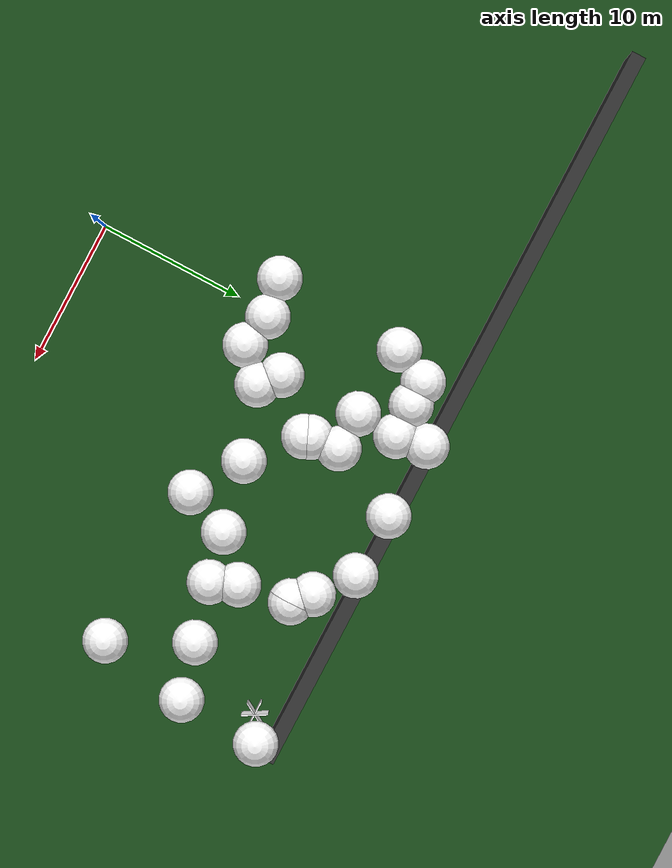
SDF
<sdf version="1.8">
 <world name="forest_world">
  <model name="fire_1">
   <pose>23.95 23.95 1.00 0 0 0.00</pose>
   <static>true</static>
   <link name="fire_link">
    <visual name="fire_1_fire_main_0">
     <geometry><box><size>1.80 0.10 2.00</size></box></geometry>
     <material>
      <ambient>0.7 0.35 0.0 1</ambient>
      <diffuse>1 1 1 1</diffuse>
      <specular>0 0 0 1</specular>
      <emissive>0 0 0 1</emissive>
      <pbr>
       <metal><albedo_map>textures/fire.png</albedo_map><metalness>0.0</metalness><roughness>0.6</roughness></metal>
      </pbr>
     </material>
     <transparency>0.0</transparency>
     <cast_shadows>false</cast_shadows>
    </visual>
    <visual name="fire_1_fire_60_1">
     <pose>0.00 0.00 0.10 0 0 1.05</pose>
     <geometry><box><size>1.80 0.10 2.00</size></box></geometry>
     <material>
      <ambient>0.7 0.35 0.0 1</ambient>
      <diffuse>1 1 1 1</diffuse>
      <specular>0 0 0 1</specular>
      <emissive>0 0 0 1</emissive>
      <pbr>
       <metal><albedo_map>textures/fire.png</albedo_map><metalness>0.0</metalness><roughness>0.6</roughness></metal>
      </pbr>
     </material>
     <transparency>0.0</transparency>
     <cast_shadows>false</cast_shadows>
    </visual>
    <visual name="fire_1_fire_120_2">
     <pose>0.00 0.00 0.20 0 0 2.09</pose>
     <geometry><box><size>1.80 0.10 2.00</size></box></geometry>
     <material>
      <ambient>0.7 0.35 0.0 1</ambient>
      <diffuse>1 1 1 1</diffuse>
      <specular>0 0 0 1</specular>
      <emissive>0 0 0 1</emissive>
      <pbr>
       <metal><albedo_map>textures/fire.png</albedo_map><metalness>0.0</metalness><roughness>0.6</roughness></metal>
      </pbr>
     </material>
     <transparency>0.0</transparency>
     <cast_shadows>false</cast_shadows>
    </visual>
    <light type="point" name="fire_1_light_0">
     <pose>0.40 0.00 0.50 0 0 0</pose>
     <diffuse>1.0 0.7 0.3 1</diffuse>
     <specular>1.0 0.8 0.3 1</specular>
     <intensity>2</intensity>
     <attenuation>
      <range>2</range>
      <constant>0.1</constant>
      <linear>0.05</linear>
      <quadratic>0.02</quadratic>
     </attenuation>
     <cast_shadows>false</cast_shadows>
    </light>
    <light type="point" name="fire_1_light_1">
     <pose>-0.20 0.35 0.50 0 0 0</pose>
     <diffuse>1.0 0.7 0.3 1</diffuse>
     <specular>1.0 0.8 0.3 1</specular>
     <intensity>2</intensity>
     <attenuation>
      <range>2</range>
      <constant>0.1</constant>
      <linear>0.05</linear>
      <quadratic>0.02</quadratic>
     </attenuation>
     <cast_shadows>false</cast_shadows>
    </light>
    <light type="point" name="fire_1_light_2">
     <pose>-0.20 -0.35 0.50 0 0 0</pose>
     <diffuse>1.0 0.7 0.3 1</diffuse>
     <specular>1.0 0.8 0.3 1</specular>
     <intensity>2</intensity>
     <attenuation>
      <range>2</range>
      <constant>0.1</constant>
      <linear>0.05</linear>
      <quadratic>0.02</quadratic>
     </attenuation>
     <cast_shadows>false</cast_shadows>
    </light>
   </link>
   <plugin filename="libignition-gazebo-pose-publisher-system.so" name="ignition::gazebo::systems::PosePublisher">
    <frame_id>world</frame_id>
    <publish_link_pose>true</publish_link_pose>
    <use_pose_vector_msg>true</use_pose_vector_msg>
    <static_publisher>true</static_publisher>
    <static_update_frequency>1</static_update_frequency>
   </plugin>
  </model>
  <model name="tree_simple497">
   <static>1</static>
   <link name="link">
    <pose>0 0 0.1 0 -0 0</pose>
    <collision name="collision_trunk">
     <pose>0 0 2 0 -0 0</pose>
     <geometry><cylinder><radius>0.25</radius><length>4</length></cylinder></geometry>
    </collision>
    <collision name="collision_treetop">
     <pose>0 0 5.2 0 -0 0</pose>
     <geometry><sphere><radius>1.5</radius></sphere></geometry>
    </collision>
    <visual name="trunk">
     <pose>0 0 2 0 -0 0</pose>
     <geometry><cylinder><radius>0.25</radius><length>4</length></cylinder></geometry>
     <material>
      <ambient>0.5 0.5 0.5 1</ambient>
      <diffuse>1.0 1.0 1.0 1</diffuse>
      <specular>0.0 0.0 0.0 1</specular>
      <pbr>
       <metal>
        <albedo_map>../worlds/textures/tree_simple_trunk.jpg</albedo_map>
        <metalness>0.0</metalness>
        <roughness>0.8</roughness>
       </metal>
      </pbr>
     </material>
    </visual>
    <visual name="treetop">
     <pose>0 0 5.2 0 -0 0</pose>
     <geometry><sphere><radius>1.5</radius></sphere></geometry>
     <material>
      <ambient>0.5 0.5 0.5 1</ambient>
      <diffuse>1.0 1.0 1.0 1</diffuse>
      <specular>0.0 0.0 0.0 1</specular>
      <pbr>
       <metal>
        <albedo_map>../worlds/textures/tree_simple_treetop.jpg</albedo_map>
        <metalness>0.0</metalness>
        <roughness>0.9</roughness>
       </metal>
      </pbr>
     </material>
    </visual>
   </link>
   <pose>16.5730666381 19.0016793819 0 0 -0 0</pose>
  </model>
  <model name="tree_simple480">
   <static>1</static>
   <link name="link">
    <pose>0 0 0.1 0 -0 0</pose>
    <collision name="collision_trunk">
     <pose>0 0 2 0 -0 0</pose>
     <geometry><cylinder><radius>0.25</radius><length>4</length></cylinder></geometry>
    </collision>
    <collision name="collision_treetop">
     <pose>0 0 5.2 0 -0 0</pose>
     <geometry><sphere><radius>1.5</radius></sphere></geometry>
    </collision>
    <visual name="trunk">
     <pose>0 0 2 0 -0 0</pose>
     <geometry><cylinder><radius>0.25</radius><length>4</length></cylinder></geometry>
     <material>
      <ambient>0.5 0.5 0.5 1</ambient>
      <diffuse>1.0 1.0 1.0 1</diffuse>
      <specular>0.0 0.0 0.0 1</specular>
      <pbr>
       <metal>
        <albedo_map>../worlds/textures/tree_simple_trunk.jpg</albedo_map>
        <metalness>0.0</metalness>
        <roughness>0.8</roughness>
       </metal>
      </pbr>
     </material>
    </visual>
    <visual name="treetop">
     <pose>0 0 5.2 0 -0 0</pose>
     <geometry><sphere><radius>1.5</radius></sphere></geometry>
     <material>
      <ambient>0.5 0.5 0.5 1</ambient>
      <diffuse>1.0 1.0 1.0 1</diffuse>
      <specular>0.0 0.0 0.0 1</specular>
      <pbr>
       <metal>
        <albedo_map>../worlds/textures/tree_simple_treetop.jpg</albedo_map>
        <metalness>0.0</metalness>
        <roughness>0.9</roughness>
       </metal>
      </pbr>
     </material>
    </visual>
   </link>
   <pose>-2.16211412072 12.1351070175 0 0 -0 0</pose>
  </model>
  <model name="tree_simple465">
   <static>1</static>
   <link name="link">
    <pose>0 0 0.1 0 -0 0</pose>
    <collision name="collision_trunk">
     <pose>0 0 2 0 -0 0</pose>
     <geometry><cylinder><radius>0.25</radius><length>4</length></cylinder></geometry>
    </collision>
    <collision name="collision_treetop">
     <pose>0 0 5.2 0 -0 0</pose>
     <geometry><sphere><radius>1.5</radius></sphere></geometry>
    </collision>
    <visual name="trunk">
     <pose>0 0 2 0 -0 0</pose>
     <geometry><cylinder><radius>0.25</radius><length>4</length></cylinder></geometry>
     <material>
      <ambient>0.5 0.5 0.5 1</ambient>
      <diffuse>1.0 1.0 1.0 1</diffuse>
      <specular>0.0 0.0 0.0 1</specular>
      <pbr>
       <metal>
        <albedo_map>../worlds/textures/tree_simple_trunk.jpg</albedo_map>
        <metalness>0.0</metalness>
        <roughness>0.8</roughness>
       </metal>
      </pbr>
     </material>
    </visual>
    <visual name="treetop">
     <pose>0 0 5.2 0 -0 0</pose>
     <geometry><sphere><radius>1.5</radius></sphere></geometry>
     <material>
      <ambient>0.5 0.5 0.5 1</ambient>
      <diffuse>1.0 1.0 1.0 1</diffuse>
      <specular>0.0 0.0 0.0 1</specular>
      <pbr>
       <metal>
        <albedo_map>../worlds/textures/tree_simple_treetop.jpg</albedo_map>
        <metalness>0.0</metalness>
        <roughness>0.9</roughness>
       </metal>
      </pbr>
     </material>
    </visual>
   </link>
   <pose>5.78708546562 20.6382949275 0 0 -0 0</pose>
  </model>
  <model name="tree_simple450">
   <static>1</static>
   <link name="link">
    <pose>0 0 0.1 0 -0 0</pose>
    <collision name="collision_trunk">
     <pose>0 0 2 0 -0 0</pose>
     <geometry><cylinder><radius>0.25</radius><length>4</length></cylinder></geometry>
    </collision>
    <collision name="collision_treetop">
     <pose>0 0 5.2 0 -0 0</pose>
     <geometry><sphere><radius>1.5</radius></sphere></geometry>
    </collision>
    <visual name="trunk">
     <pose>0 0 2 0 -0 0</pose>
     <geometry><cylinder><radius>0.25</radius><length>4</length></cylinder></geometry>
     <material>
      <ambient>0.5 0.5 0.5 1</ambient>
      <diffuse>1.0 1.0 1.0 1</diffuse>
      <specular>0.0 0.0 0.0 1</specular>
      <pbr>
       <metal>
        <albedo_map>../worlds/textures/tree_simple_trunk.jpg</albedo_map>
        <metalness>0.0</metalness>
        <roughness>0.8</roughness>
       </metal>
      </pbr>
     </material>
    </visual>
    <visual name="treetop">
     <pose>0 0 5.2 0 -0 0</pose>
     <geometry><sphere><radius>1.5</radius></sphere></geometry>
     <material>
      <ambient>0.5 0.5 0.5 1</ambient>
      <diffuse>1.0 1.0 1.0 1</diffuse>
      <specular>0.0 0.0 0.0 1</specular>
      <pbr>
       <metal>
        <albedo_map>../worlds/textures/tree_simple_treetop.jpg</albedo_map>
        <metalness>0.0</metalness>
        <roughness>0.9</roughness>
       </metal>
      </pbr>
     </material>
    </visual>
   </link>
   <pose>16.0273432372 22.5148519884 0 0 -0 0</pose>
  </model>
  <model name="tree_simple442">
   <static>1</static>
   <link name="link">
    <pose>0 0 0.1 0 -0 0</pose>
    <collision name="collision_trunk">
     <pose>0 0 2 0 -0 0</pose>
     <geometry><cylinder><radius>0.25</radius><length>4</length></cylinder></geometry>
    </collision>
    <collision name="collision_treetop">
     <pose>0 0 5.2 0 -0 0</pose>
     <geometry><sphere><radius>1.5</radius></sphere></geometry>
    </collision>
    <visual name="trunk">
     <pose>0 0 2 0 -0 0</pose>
     <geometry><cylinder><radius>0.25</radius><length>4</length></cylinder></geometry>
     <material>
      <ambient>0.5 0.5 0.5 1</ambient>
      <diffuse>1.0 1.0 1.0 1</diffuse>
      <specular>0.0 0.0 0.0 1</specular>
      <pbr>
       <metal>
        <albedo_map>../worlds/textures/tree_simple_trunk.jpg</albedo_map>
        <metalness>0.0</metalness>
        <roughness>0.8</roughness>
       </metal>
      </pbr>
     </material>
    </visual>
    <visual name="treetop">
     <pose>0 0 5.2 0 -0 0</pose>
     <geometry><sphere><radius>1.5</radius></sphere></geometry>
     <material>
      <ambient>0.5 0.5 0.5 1</ambient>
      <diffuse>1.0 1.0 1.0 1</diffuse>
      <specular>0.0 0.0 0.0 1</specular>
      <pbr>
       <metal>
        <albedo_map>../worlds/textures/tree_simple_treetop.jpg</albedo_map>
        <metalness>0.0</metalness>
        <roughness>0.9</roughness>
       </metal>
      </pbr>
     </material>
    </visual>
   </link>
   <pose>-1.68249170611 21.1094247696 0 0 -0 0</pose>
  </model>
  <model name="tree_simple387">
   <static>1</static>
   <link name="link">
    <pose>0 0 0.1 0 -0 0</pose>
    <collision name="collision_trunk">
     <pose>0 0 2 0 -0 0</pose>
     <geometry><cylinder><radius>0.25</radius><length>4</length></cylinder></geometry>
    </collision>
    <collision name="collision_treetop">
     <pose>0 0 5.2 0 -0 0</pose>
     <geometry><sphere><radius>1.5</radius></sphere></geometry>
    </collision>
    <visual name="trunk">
     <pose>0 0 2 0 -0 0</pose>
     <geometry><cylinder><radius>0.25</radius><length>4</length></cylinder></geometry>
     <material>
      <ambient>0.5 0.5 0.5 1</ambient>
      <diffuse>1.0 1.0 1.0 1</diffuse>
      <specular>0.0 0.0 0.0 1</specular>
      <pbr>
       <metal>
        <albedo_map>../worlds/textures/tree_simple_trunk.jpg</albedo_map>
        <metalness>0.0</metalness>
        <roughness>0.8</roughness>
       </metal>
      </pbr>
     </material>
    </visual>
    <visual name="treetop">
     <pose>0 0 5.2 0 -0 0</pose>
     <geometry><sphere><radius>1.5</radius></sphere></geometry>
     <material>
      <ambient>0.5 0.5 0.5 1</ambient>
      <diffuse>1.0 1.0 1.0 1</diffuse>
      <specular>0.0 0.0 0.0 1</specular>
      <pbr>
       <metal>
        <albedo_map>../worlds/textures/tree_simple_treetop.jpg</albedo_map>
        <metalness>0.0</metalness>
        <roughness>0.9</roughness>
       </metal>
      </pbr>
     </material>
    </visual>
   </link>
   <pose>25.1584680938 24.780687948 0 0 -0 0</pose>
  </model>
  <model name="tree_simple339">
   <static>1</static>
   <link name="link">
    <pose>0 0 0.1 0 -0 0</pose>
    <collision name="collision_trunk">
     <pose>0 0 2 0 -0 0</pose>
     <geometry><cylinder><radius>0.25</radius><length>4</length></cylinder></geometry>
    </collision>
    <collision name="collision_treetop">
     <pose>0 0 5.2 0 -0 0</pose>
     <geometry><sphere><radius>1.5</radius></sphere></geometry>
    </collision>
    <visual name="trunk">
     <pose>0 0 2 0 -0 0</pose>
     <geometry><cylinder><radius>0.25</radius><length>4</length></cylinder></geometry>
     <material>
      <ambient>0.5 0.5 0.5 1</ambient>
      <diffuse>1.0 1.0 1.0 1</diffuse>
      <specular>0.0 0.0 0.0 1</specular>
      <pbr>
       <metal>
        <albedo_map>../worlds/textures/tree_simple_trunk.jpg</albedo_map>
        <metalness>0.0</metalness>
        <roughness>0.8</roughness>
       </metal>
      </pbr>
     </material>
    </visual>
    <visual name="treetop">
     <pose>0 0 5.2 0 -0 0</pose>
     <geometry><sphere><radius>1.5</radius></sphere></geometry>
     <material>
      <ambient>0.5 0.5 0.5 1</ambient>
      <diffuse>1.0 1.0 1.0 1</diffuse>
      <specular>0.0 0.0 0.0 1</specular>
      <pbr>
       <metal>
        <albedo_map>../worlds/textures/tree_simple_treetop.jpg</albedo_map>
        <metalness>0.0</metalness>
        <roughness>0.9</roughness>
       </metal>
      </pbr>
     </material>
    </visual>
   </link>
   <pose>8.14193712957 25.5166560065 0 0 -0 0</pose>
  </model>
  <model name="tree_simple328">
   <static>1</static>
   <link name="link">
    <pose>0 0 0.1 0 -0 0</pose>
    <collision name="collision_trunk">
     <pose>0 0 2 0 -0 0</pose>
     <geometry><cylinder><radius>0.25</radius><length>4</length></cylinder></geometry>
    </collision>
    <collision name="collision_treetop">
     <pose>0 0 5.2 0 -0 0</pose>
     <geometry><sphere><radius>1.5</radius></sphere></geometry>
    </collision>
    <visual name="trunk">
     <pose>0 0 2 0 -0 0</pose>
     <geometry><cylinder><radius>0.25</radius><length>4</length></cylinder></geometry>
     <material>
      <ambient>0.5 0.5 0.5 1</ambient>
      <diffuse>1.0 1.0 1.0 1</diffuse>
      <specular>0.0 0.0 0.0 1</specular>
      <pbr>
       <metal>
        <albedo_map>../worlds/textures/tree_simple_trunk.jpg</albedo_map>
        <metalness>0.0</metalness>
        <roughness>0.8</roughness>
       </metal>
      </pbr>
     </material>
    </visual>
    <visual name="treetop">
     <pose>0 0 5.2 0 -0 0</pose>
     <geometry><sphere><radius>1.5</radius></sphere></geometry>
     <material>
      <ambient>0.5 0.5 0.5 1</ambient>
      <diffuse>1.0 1.0 1.0 1</diffuse>
      <specular>0.0 0.0 0.0 1</specular>
      <pbr>
       <metal>
        <albedo_map>../worlds/textures/tree_simple_treetop.jpg</albedo_map>
        <metalness>0.0</metalness>
        <roughness>0.9</roughness>
       </metal>
      </pbr>
     </material>
    </visual>
   </link>
   <pose>3.34573808519 23.5188113382 0 0 -0 0</pose>
  </model>
  <model name="tree_simple324">
   <static>1</static>
   <link name="link">
    <pose>0 0 0.1 0 -0 0</pose>
    <collision name="collision_trunk">
     <pose>0 0 2 0 -0 0</pose>
     <geometry><cylinder><radius>0.25</radius><length>4</length></cylinder></geometry>
    </collision>
    <collision name="collision_treetop">
     <pose>0 0 5.2 0 -0 0</pose>
     <geometry><sphere><radius>1.5</radius></sphere></geometry>
    </collision>
    <visual name="trunk">
     <pose>0 0 2 0 -0 0</pose>
     <geometry><cylinder><radius>0.25</radius><length>4</length></cylinder></geometry>
     <material>
      <ambient>0.5 0.5 0.5 1</ambient>
      <diffuse>1.0 1.0 1.0 1</diffuse>
      <specular>0.0 0.0 0.0 1</specular>
      <pbr>
       <metal>
        <albedo_map>../worlds/textures/tree_simple_trunk.jpg</albedo_map>
        <metalness>0.0</metalness>
        <roughness>0.8</roughness>
       </metal>
      </pbr>
     </material>
    </visual>
    <visual name="treetop">
     <pose>0 0 5.2 0 -0 0</pose>
     <geometry><sphere><radius>1.5</radius></sphere></geometry>
     <material>
      <ambient>0.5 0.5 0.5 1</ambient>
      <diffuse>1.0 1.0 1.0 1</diffuse>
      <specular>0.0 0.0 0.0 1</specular>
      <pbr>
       <metal>
        <albedo_map>../worlds/textures/tree_simple_treetop.jpg</albedo_map>
        <metalness>0.0</metalness>
        <roughness>0.9</roughness>
       </metal>
      </pbr>
     </material>
    </visual>
   </link>
   <pose>2.67974288493 12.1656578915 0 0 -0 0</pose>
  </model>
  <model name="tree_simple304">
   <static>1</static>
   <link name="link">
    <pose>0 0 0.1 0 -0 0</pose>
    <collision name="collision_trunk">
     <pose>0 0 2 0 -0 0</pose>
     <geometry><cylinder><radius>0.25</radius><length>4</length></cylinder></geometry>
    </collision>
    <collision name="collision_treetop">
     <pose>0 0 5.2 0 -0 0</pose>
     <geometry><sphere><radius>1.5</radius></sphere></geometry>
    </collision>
    <visual name="trunk">
     <pose>0 0 2 0 -0 0</pose>
     <geometry><cylinder><radius>0.25</radius><length>4</length></cylinder></geometry>
     <material>
      <ambient>0.5 0.5 0.5 1</ambient>
      <diffuse>1.0 1.0 1.0 1</diffuse>
      <specular>0.0 0.0 0.0 1</specular>
      <pbr>
       <metal>
        <albedo_map>../worlds/textures/tree_simple_trunk.jpg</albedo_map>
        <metalness>0.0</metalness>
        <roughness>0.8</roughness>
       </metal>
      </pbr>
     </material>
    </visual>
    <visual name="treetop">
     <pose>0 0 5.2 0 -0 0</pose>
     <geometry><sphere><radius>1.5</radius></sphere></geometry>
     <material>
      <ambient>0.5 0.5 0.5 1</ambient>
      <diffuse>1.0 1.0 1.0 1</diffuse>
      <specular>0.0 0.0 0.0 1</specular>
      <pbr>
       <metal>
        <albedo_map>../worlds/textures/tree_simple_treetop.jpg</albedo_map>
        <metalness>0.0</metalness>
        <roughness>0.9</roughness>
       </metal>
      </pbr>
     </material>
    </visual>
   </link>
   <pose>12.7492321523 13.4736505169 0 0 -0 0</pose>
  </model>
  <model name="tree_simple266">
   <static>1</static>
   <link name="link">
    <pose>0 0 0.1 0 -0 0</pose>
    <collision name="collision_trunk">
     <pose>0 0 2 0 -0 0</pose>
     <geometry><cylinder><radius>0.25</radius><length>4</length></cylinder></geometry>
    </collision>
    <collision name="collision_treetop">
     <pose>0 0 5.2 0 -0 0</pose>
     <geometry><sphere><radius>1.5</radius></sphere></geometry>
    </collision>
    <visual name="trunk">
     <pose>0 0 2 0 -0 0</pose>
     <geometry><cylinder><radius>0.25</radius><length>4</length></cylinder></geometry>
     <material>
      <ambient>0.5 0.5 0.5 1</ambient>
      <diffuse>1.0 1.0 1.0 1</diffuse>
      <specular>0.0 0.0 0.0 1</specular>
      <pbr>
       <metal>
        <albedo_map>../worlds/textures/tree_simple_trunk.jpg</albedo_map>
        <metalness>0.0</metalness>
        <roughness>0.8</roughness>
       </metal>
      </pbr>
     </material>
    </visual>
    <visual name="treetop">
     <pose>0 0 5.2 0 -0 0</pose>
     <geometry><sphere><radius>1.5</radius></sphere></geometry>
     <material>
      <ambient>0.5 0.5 0.5 1</ambient>
      <diffuse>1.0 1.0 1.0 1</diffuse>
      <specular>0.0 0.0 0.0 1</specular>
      <pbr>
       <metal>
        <albedo_map>../worlds/textures/tree_simple_treetop.jpg</albedo_map>
        <metalness>0.0</metalness>
        <roughness>0.9</roughness>
       </metal>
      </pbr>
     </material>
    </visual>
   </link>
   <pose>24.8758321483 19.2237149963 0 0 -0 0</pose>
  </model>
  <model name="tree_simple246">
   <static>1</static>
   <link name="link">
    <pose>0 0 0.1 0 -0 0</pose>
    <collision name="collision_trunk">
     <pose>0 0 2 0 -0 0</pose>
     <geometry><cylinder><radius>0.25</radius><length>4</length></cylinder></geometry>
    </collision>
    <collision name="collision_treetop">
     <pose>0 0 5.2 0 -0 0</pose>
     <geometry><sphere><radius>1.5</radius></sphere></geometry>
    </collision>
    <visual name="trunk">
     <pose>0 0 2 0 -0 0</pose>
     <geometry><cylinder><radius>0.25</radius><length>4</length></cylinder></geometry>
     <material>
      <ambient>0.5 0.5 0.5 1</ambient>
      <diffuse>1.0 1.0 1.0 1</diffuse>
      <specular>0.0 0.0 0.0 1</specular>
      <pbr>
       <metal>
        <albedo_map>../worlds/textures/tree_simple_trunk.jpg</albedo_map>
        <metalness>0.0</metalness>
        <roughness>0.8</roughness>
       </metal>
      </pbr>
     </material>
    </visual>
    <visual name="treetop">
     <pose>0 0 5.2 0 -0 0</pose>
     <geometry><sphere><radius>1.5</radius></sphere></geometry>
     <material>
      <ambient>0.5 0.5 0.5 1</ambient>
      <diffuse>1.0 1.0 1.0 1</diffuse>
      <specular>0.0 0.0 0.0 1</specular>
      <pbr>
       <metal>
        <albedo_map>../worlds/textures/tree_simple_treetop.jpg</albedo_map>
        <metalness>0.0</metalness>
        <roughness>0.9</roughness>
       </metal>
      </pbr>
     </material>
    </visual>
   </link>
   <pose>4.59531277399 14.0377896265 0 0 -0 0</pose>
  </model>
  <model name="tree_simple237">
   <static>1</static>
   <link name="link">
    <pose>0 0 0.1 0 -0 0</pose>
    <collision name="collision_trunk">
     <pose>0 0 2 0 -0 0</pose>
     <geometry><cylinder><radius>0.25</radius><length>4</length></cylinder></geometry>
    </collision>
    <collision name="collision_treetop">
     <pose>0 0 5.2 0 -0 0</pose>
     <geometry><sphere><radius>1.5</radius></sphere></geometry>
    </collision>
    <visual name="trunk">
     <pose>0 0 2 0 -0 0</pose>
     <geometry><cylinder><radius>0.25</radius><length>4</length></cylinder></geometry>
     <material>
      <ambient>0.5 0.5 0.5 1</ambient>
      <diffuse>1.0 1.0 1.0 1</diffuse>
      <specular>0.0 0.0 0.0 1</specular>
      <pbr>
       <metal>
        <albedo_map>../worlds/textures/tree_simple_trunk.jpg</albedo_map>
        <metalness>0.0</metalness>
        <roughness>0.8</roughness>
       </metal>
      </pbr>
     </material>
    </visual>
    <visual name="treetop">
     <pose>0 0 5.2 0 -0 0</pose>
     <geometry><sphere><radius>1.5</radius></sphere></geometry>
     <material>
      <ambient>0.5 0.5 0.5 1</ambient>
      <diffuse>1.0 1.0 1.0 1</diffuse>
      <specular>0.0 0.0 0.0 1</specular>
      <pbr>
       <metal>
        <albedo_map>../worlds/textures/tree_simple_treetop.jpg</albedo_map>
        <metalness>0.0</metalness>
        <roughness>0.9</roughness>
       </metal>
      </pbr>
     </material>
    </visual>
   </link>
   <pose>23.796461239 13.0760295483 0 0 -0 0</pose>
  </model>
  <model name="tree_simple181">
   <static>1</static>
   <link name="link">
    <pose>0 0 0.1 0 -0 0</pose>
    <collision name="collision_trunk">
     <pose>0 0 2 0 -0 0</pose>
     <geometry><cylinder><radius>0.25</radius><length>4</length></cylinder></geometry>
    </collision>
    <collision name="collision_treetop">
     <pose>0 0 5.2 0 -0 0</pose>
     <geometry><sphere><radius>1.5</radius></sphere></geometry>
    </collision>
    <visual name="trunk">
     <pose>0 0 2 0 -0 0</pose>
     <geometry><cylinder><radius>0.25</radius><length>4</length></cylinder></geometry>
     <material>
      <ambient>0.5 0.5 0.5 1</ambient>
      <diffuse>1.0 1.0 1.0 1</diffuse>
      <specular>0.0 0.0 0.0 1</specular>
      <pbr>
       <metal>
        <albedo_map>../worlds/textures/tree_simple_trunk.jpg</albedo_map>
        <metalness>0.0</metalness>
        <roughness>0.8</roughness>
       </metal>
      </pbr>
     </material>
    </visual>
    <visual name="treetop">
     <pose>0 0 5.2 0 -0 0</pose>
     <geometry><sphere><radius>1.5</radius></sphere></geometry>
     <material>
      <ambient>0.5 0.5 0.5 1</ambient>
      <diffuse>1.0 1.0 1.0 1</diffuse>
      <specular>0.0 0.0 0.0 1</specular>
      <pbr>
       <metal>
        <albedo_map>../worlds/textures/tree_simple_treetop.jpg</albedo_map>
        <metalness>0.0</metalness>
        <roughness>0.9</roughness>
       </metal>
      </pbr>
     </material>
    </visual>
   </link>
   <pose>14.8848643659 23.5674852772 0 0 -0 0</pose>
  </model>
  <model name="tree_simple177">
   <static>1</static>
   <link name="link">
    <pose>0 0 0.1 0 -0 0</pose>
    <collision name="collision_trunk">
     <pose>0 0 2 0 -0 0</pose>
     <geometry><cylinder><radius>0.25</radius><length>4</length></cylinder></geometry>
    </collision>
    <collision name="collision_treetop">
     <pose>0 0 5.2 0 -0 0</pose>
     <geometry><sphere><radius>1.5</radius></sphere></geometry>
    </collision>
    <visual name="trunk">
     <pose>0 0 2 0 -0 0</pose>
     <geometry><cylinder><radius>0.25</radius><length>4</length></cylinder></geometry>
     <material>
      <ambient>0.5 0.5 0.5 1</ambient>
      <diffuse>1.0 1.0 1.0 1</diffuse>
      <specular>0.0 0.0 0.0 1</specular>
      <pbr>
       <metal>
        <albedo_map>../worlds/textures/tree_simple_trunk.jpg</albedo_map>
        <metalness>0.0</metalness>
        <roughness>0.8</roughness>
       </metal>
      </pbr>
     </material>
    </visual>
    <visual name="treetop">
     <pose>0 0 5.2 0 -0 0</pose>
     <geometry><sphere><radius>1.5</radius></sphere></geometry>
     <material>
      <ambient>0.5 0.5 0.5 1</ambient>
      <diffuse>1.0 1.0 1.0 1</diffuse>
      <specular>0.0 0.0 0.0 1</specular>
      <pbr>
       <metal>
        <albedo_map>../worlds/textures/tree_simple_treetop.jpg</albedo_map>
        <metalness>0.0</metalness>
        <roughness>0.9</roughness>
       </metal>
      </pbr>
     </material>
    </visual>
   </link>
   <pose>5.95472873547 18.7195439191 0 0 -0 0</pose>
  </model>
  <model name="tree_simple175">
   <static>1</static>
   <link name="link">
    <pose>0 0 0.1 0 -0 0</pose>
    <collision name="collision_trunk">
     <pose>0 0 2 0 -0 0</pose>
     <geometry><cylinder><radius>0.25</radius><length>4</length></cylinder></geometry>
    </collision>
    <collision name="collision_treetop">
     <pose>0 0 5.2 0 -0 0</pose>
     <geometry><sphere><radius>1.5</radius></sphere></geometry>
    </collision>
    <visual name="trunk">
     <pose>0 0 2 0 -0 0</pose>
     <geometry><cylinder><radius>0.25</radius><length>4</length></cylinder></geometry>
     <material>
      <ambient>0.5 0.5 0.5 1</ambient>
      <diffuse>1.0 1.0 1.0 1</diffuse>
      <specular>0.0 0.0 0.0 1</specular>
      <pbr>
       <metal>
        <albedo_map>../worlds/textures/tree_simple_trunk.jpg</albedo_map>
        <metalness>0.0</metalness>
        <roughness>0.8</roughness>
       </metal>
      </pbr>
     </material>
    </visual>
    <visual name="treetop">
     <pose>0 0 5.2 0 -0 0</pose>
     <geometry><sphere><radius>1.5</radius></sphere></geometry>
     <material>
      <ambient>0.5 0.5 0.5 1</ambient>
      <diffuse>1.0 1.0 1.0 1</diffuse>
      <specular>0.0 0.0 0.0 1</specular>
      <pbr>
       <metal>
        <albedo_map>../worlds/textures/tree_simple_treetop.jpg</albedo_map>
        <metalness>0.0</metalness>
        <roughness>0.9</roughness>
       </metal>
      </pbr>
     </material>
    </visual>
   </link>
   <pose>-0.556108098606 23.4554331428 0 0 -0 0</pose>
  </model>
  <model name="tree_simple160">
   <static>1</static>
   <link name="link">
    <pose>0 0 0.1 0 -0 0</pose>
    <collision name="collision_trunk">
     <pose>0 0 2 0 -0 0</pose>
     <geometry><cylinder><radius>0.25</radius><length>4</length></cylinder></geometry>
    </collision>
    <collision name="collision_treetop">
     <pose>0 0 5.2 0 -0 0</pose>
     <geometry><sphere><radius>1.5</radius></sphere></geometry>
    </collision>
    <visual name="trunk">
     <pose>0 0 2 0 -0 0</pose>
     <geometry><cylinder><radius>0.25</radius><length>4</length></cylinder></geometry>
     <material>
      <ambient>0.5 0.5 0.5 1</ambient>
      <diffuse>1.0 1.0 1.0 1</diffuse>
      <specular>0.0 0.0 0.0 1</specular>
      <pbr>
       <metal>
        <albedo_map>../worlds/textures/tree_simple_trunk.jpg</albedo_map>
        <metalness>0.0</metalness>
        <roughness>0.8</roughness>
       </metal>
      </pbr>
     </material>
    </visual>
    <visual name="treetop">
     <pose>0 0 5.2 0 -0 0</pose>
     <geometry><sphere><radius>1.5</radius></sphere></geometry>
     <material>
      <ambient>0.5 0.5 0.5 1</ambient>
      <diffuse>1.0 1.0 1.0 1</diffuse>
      <specular>0.0 0.0 0.0 1</specular>
      <pbr>
       <metal>
        <albedo_map>../worlds/textures/tree_simple_treetop.jpg</albedo_map>
        <metalness>0.0</metalness>
        <roughness>0.9</roughness>
       </metal>
      </pbr>
     </material>
    </visual>
   </link>
   <pose>3.31258380175 15.1525774981 0 0 -0 0</pose>
  </model>
  <model name="tree_simple113">
   <static>1</static>
   <link name="link">
    <pose>0 0 0.1 0 -0 0</pose>
    <collision name="collision_trunk">
     <pose>0 0 2 0 -0 0</pose>
     <geometry><cylinder><radius>0.25</radius><length>4</length></cylinder></geometry>
    </collision>
    <collision name="collision_treetop">
     <pose>0 0 5.2 0 -0 0</pose>
     <geometry><sphere><radius>1.5</radius></sphere></geometry>
    </collision>
    <visual name="trunk">
     <pose>0 0 2 0 -0 0</pose>
     <geometry><cylinder><radius>0.25</radius><length>4</length></cylinder></geometry>
     <material>
      <ambient>0.5 0.5 0.5 1</ambient>
      <diffuse>1.0 1.0 1.0 1</diffuse>
      <specular>0.0 0.0 0.0 1</specular>
      <pbr>
       <metal>
        <albedo_map>../worlds/textures/tree_simple_trunk.jpg</albedo_map>
        <metalness>0.0</metalness>
        <roughness>0.8</roughness>
       </metal>
      </pbr>
     </material>
    </visual>
    <visual name="treetop">
     <pose>0 0 5.2 0 -0 0</pose>
     <geometry><sphere><radius>1.5</radius></sphere></geometry>
     <material>
      <ambient>0.5 0.5 0.5 1</ambient>
      <diffuse>1.0 1.0 1.0 1</diffuse>
      <specular>0.0 0.0 0.0 1</specular>
      <pbr>
       <metal>
        <albedo_map>../worlds/textures/tree_simple_treetop.jpg</albedo_map>
        <metalness>0.0</metalness>
        <roughness>0.9</roughness>
       </metal>
      </pbr>
     </material>
    </visual>
   </link>
   <pose>2.99718347824 25.5817803205 0 0 -0 0</pose>
  </model>
  <model name="tree_simple98">
   <static>1</static>
   <link name="link">
    <pose>0 0 0.1 0 -0 0</pose>
    <collision name="collision_trunk">
     <pose>0 0 2 0 -0 0</pose>
     <geometry><cylinder><radius>0.25</radius><length>4</length></cylinder></geometry>
    </collision>
    <collision name="collision_treetop">
     <pose>0 0 5.2 0 -0 0</pose>
     <geometry><sphere><radius>1.5</radius></sphere></geometry>
    </collision>
    <visual name="trunk">
     <pose>0 0 2 0 -0 0</pose>
     <geometry><cylinder><radius>0.25</radius><length>4</length></cylinder></geometry>
     <material>
      <ambient>0.5 0.5 0.5 1</ambient>
      <diffuse>1.0 1.0 1.0 1</diffuse>
      <specular>0.0 0.0 0.0 1</specular>
      <pbr>
       <metal>
        <albedo_map>../worlds/textures/tree_simple_trunk.jpg</albedo_map>
        <metalness>0.0</metalness>
        <roughness>0.8</roughness>
       </metal>
      </pbr>
     </material>
    </visual>
    <visual name="treetop">
     <pose>0 0 5.2 0 -0 0</pose>
     <geometry><sphere><radius>1.5</radius></sphere></geometry>
     <material>
      <ambient>0.5 0.5 0.5 1</ambient>
      <diffuse>1.0 1.0 1.0 1</diffuse>
      <specular>0.0 0.0 0.0 1</specular>
      <pbr>
       <metal>
        <albedo_map>../worlds/textures/tree_simple_treetop.jpg</albedo_map>
        <metalness>0.0</metalness>
        <roughness>0.9</roughness>
       </metal>
      </pbr>
     </material>
    </visual>
   </link>
   <pose>14.024693035 16.5700471203 0 0 -0 0</pose>
  </model>
  <model name="tree_simple95">
   <static>1</static>
   <link name="link">
    <pose>0 0 0.1 0 -0 0</pose>
    <collision name="collision_trunk">
     <pose>0 0 2 0 -0 0</pose>
     <geometry><cylinder><radius>0.25</radius><length>4</length></cylinder></geometry>
    </collision>
    <collision name="collision_treetop">
     <pose>0 0 5.2 0 -0 0</pose>
     <geometry><sphere><radius>1.5</radius></sphere></geometry>
    </collision>
    <visual name="trunk">
     <pose>0 0 2 0 -0 0</pose>
     <geometry><cylinder><radius>0.25</radius><length>4</length></cylinder></geometry>
     <material>
      <ambient>0.5 0.5 0.5 1</ambient>
      <diffuse>1.0 1.0 1.0 1</diffuse>
      <specular>0.0 0.0 0.0 1</specular>
      <pbr>
       <metal>
        <albedo_map>../worlds/textures/tree_simple_trunk.jpg</albedo_map>
        <metalness>0.0</metalness>
        <roughness>0.8</roughness>
       </metal>
      </pbr>
     </material>
    </visual>
    <visual name="treetop">
     <pose>0 0 5.2 0 -0 0</pose>
     <geometry><sphere><radius>1.5</radius></sphere></geometry>
     <material>
      <ambient>0.5 0.5 0.5 1</ambient>
      <diffuse>1.0 1.0 1.0 1</diffuse>
      <specular>0.0 0.0 0.0 1</specular>
      <pbr>
       <metal>
        <albedo_map>../worlds/textures/tree_simple_treetop.jpg</albedo_map>
        <metalness>0.0</metalness>
        <roughness>0.9</roughness>
       </metal>
      </pbr>
     </material>
    </visual>
   </link>
   <pose>3.20302207312 20.7020436907 0 0 -0 0</pose>
  </model>
  <model name="tree_simple94">
   <static>1</static>
   <link name="link">
    <pose>0 0 0.1 0 -0 0</pose>
    <collision name="collision_trunk">
     <pose>0 0 2 0 -0 0</pose>
     <geometry><cylinder><radius>0.25</radius><length>4</length></cylinder></geometry>
    </collision>
    <collision name="collision_treetop">
     <pose>0 0 5.2 0 -0 0</pose>
     <geometry><sphere><radius>1.5</radius></sphere></geometry>
    </collision>
    <visual name="trunk">
     <pose>0 0 2 0 -0 0</pose>
     <geometry><cylinder><radius>0.25</radius><length>4</length></cylinder></geometry>
     <material>
      <ambient>0.5 0.5 0.5 1</ambient>
      <diffuse>1.0 1.0 1.0 1</diffuse>
      <specular>0.0 0.0 0.0 1</specular>
      <pbr>
       <metal>
        <albedo_map>../worlds/textures/tree_simple_trunk.jpg</albedo_map>
        <metalness>0.0</metalness>
        <roughness>0.8</roughness>
       </metal>
      </pbr>
     </material>
    </visual>
    <visual name="treetop">
     <pose>0 0 5.2 0 -0 0</pose>
     <geometry><sphere><radius>1.5</radius></sphere></geometry>
     <material>
      <ambient>0.5 0.5 0.5 1</ambient>
      <diffuse>1.0 1.0 1.0 1</diffuse>
      <specular>0.0 0.0 0.0 1</specular>
      <pbr>
       <metal>
        <albedo_map>../worlds/textures/tree_simple_treetop.jpg</albedo_map>
        <metalness>0.0</metalness>
        <roughness>0.9</roughness>
       </metal>
      </pbr>
     </material>
    </visual>
   </link>
   <pose>6.14879298853 18.2743585392 0 0 -0 0</pose>
  </model>
  <model name="tree_simple85">
   <static>1</static>
   <link name="link">
    <pose>0 0 0.1 0 -0 0</pose>
    <collision name="collision_trunk">
     <pose>0 0 2 0 -0 0</pose>
     <geometry><cylinder><radius>0.25</radius><length>4</length></cylinder></geometry>
    </collision>
    <collision name="collision_treetop">
     <pose>0 0 5.2 0 -0 0</pose>
     <geometry><sphere><radius>1.5</radius></sphere></geometry>
    </collision>
    <visual name="trunk">
     <pose>0 0 2 0 -0 0</pose>
     <geometry><cylinder><radius>0.25</radius><length>4</length></cylinder></geometry>
     <material>
      <ambient>0.5 0.5 0.5 1</ambient>
      <diffuse>1.0 1.0 1.0 1</diffuse>
      <specular>0.0 0.0 0.0 1</specular>
      <pbr>
       <metal>
        <albedo_map>../worlds/textures/tree_simple_trunk.jpg</albedo_map>
        <metalness>0.0</metalness>
        <roughness>0.8</roughness>
       </metal>
      </pbr>
     </material>
    </visual>
    <visual name="treetop">
     <pose>0 0 5.2 0 -0 0</pose>
     <geometry><sphere><radius>1.5</radius></sphere></geometry>
     <material>
      <ambient>0.5 0.5 0.5 1</ambient>
      <diffuse>1.0 1.0 1.0 1</diffuse>
      <specular>0.0 0.0 0.0 1</specular>
      <pbr>
       <metal>
        <albedo_map>../worlds/textures/tree_simple_treetop.jpg</albedo_map>
        <metalness>0.0</metalness>
        <roughness>0.9</roughness>
       </metal>
      </pbr>
     </material>
    </visual>
   </link>
   <pose>9.34911088968 15.5834050792 0 0 -0 0</pose>
  </model>
  <model name="tree_simple84">
   <static>1</static>
   <link name="link">
    <pose>0 0 0.1 0 -0 0</pose>
    <collision name="collision_trunk">
     <pose>0 0 2 0 -0 0</pose>
     <geometry><cylinder><radius>0.25</radius><length>4</length></cylinder></geometry>
    </collision>
    <collision name="collision_treetop">
     <pose>0 0 5.2 0 -0 0</pose>
     <geometry><sphere><radius>1.5</radius></sphere></geometry>
    </collision>
    <visual name="trunk">
     <pose>0 0 2 0 -0 0</pose>
     <geometry><cylinder><radius>0.25</radius><length>4</length></cylinder></geometry>
     <material>
      <ambient>0.5 0.5 0.5 1</ambient>
      <diffuse>1.0 1.0 1.0 1</diffuse>
      <specular>0.0 0.0 0.0 1</specular>
      <pbr>
       <metal>
        <albedo_map>../worlds/textures/tree_simple_trunk.jpg</albedo_map>
        <metalness>0.0</metalness>
        <roughness>0.8</roughness>
       </metal>
      </pbr>
     </material>
    </visual>
    <visual name="treetop">
     <pose>0 0 5.2 0 -0 0</pose>
     <geometry><sphere><radius>1.5</radius></sphere></geometry>
     <material>
      <ambient>0.5 0.5 0.5 1</ambient>
      <diffuse>1.0 1.0 1.0 1</diffuse>
      <specular>0.0 0.0 0.0 1</specular>
      <pbr>
       <metal>
        <albedo_map>../worlds/textures/tree_simple_treetop.jpg</albedo_map>
        <metalness>0.0</metalness>
        <roughness>0.9</roughness>
       </metal>
      </pbr>
     </material>
    </visual>
   </link>
   <pose>17.2995655595 17.2600237407 0 0 -0 0</pose>
  </model>
  <model name="tree_simple73">
   <static>1</static>
   <link name="link">
    <pose>0 0 0.1 0 -0 0</pose>
    <collision name="collision_trunk">
     <pose>0 0 2 0 -0 0</pose>
     <geometry><cylinder><radius>0.25</radius><length>4</length></cylinder></geometry>
    </collision>
    <collision name="collision_treetop">
     <pose>0 0 5.2 0 -0 0</pose>
     <geometry><sphere><radius>1.5</radius></sphere></geometry>
    </collision>
    <visual name="trunk">
     <pose>0 0 2 0 -0 0</pose>
     <geometry><cylinder><radius>0.25</radius><length>4</length></cylinder></geometry>
     <material>
      <ambient>0.5 0.5 0.5 1</ambient>
      <diffuse>1.0 1.0 1.0 1</diffuse>
      <specular>0.0 0.0 0.0 1</specular>
      <pbr>
       <metal>
        <albedo_map>../worlds/textures/tree_simple_trunk.jpg</albedo_map>
        <metalness>0.0</metalness>
        <roughness>0.8</roughness>
       </metal>
      </pbr>
     </material>
    </visual>
    <visual name="treetop">
     <pose>0 0 5.2 0 -0 0</pose>
     <geometry><sphere><radius>1.5</radius></sphere></geometry>
     <material>
      <ambient>0.5 0.5 0.5 1</ambient>
      <diffuse>1.0 1.0 1.0 1</diffuse>
      <specular>0.0 0.0 0.0 1</specular>
      <pbr>
       <metal>
        <albedo_map>../worlds/textures/tree_simple_treetop.jpg</albedo_map>
        <metalness>0.0</metalness>
        <roughness>0.9</roughness>
       </metal>
      </pbr>
     </material>
    </visual>
   </link>
   <pose>1.10004900248 23.4568824066 0 0 -0 0</pose>
  </model>
  <model name="tree_simple72">
   <static>1</static>
   <link name="link">
    <pose>0 0 0.1 0 -0 0</pose>
    <collision name="collision_trunk">
     <pose>0 0 2 0 -0 0</pose>
     <geometry><cylinder><radius>0.25</radius><length>4</length></cylinder></geometry>
    </collision>
    <collision name="collision_treetop">
     <pose>0 0 5.2 0 -0 0</pose>
     <geometry><sphere><radius>1.5</radius></sphere></geometry>
    </collision>
    <visual name="trunk">
     <pose>0 0 2 0 -0 0</pose>
     <geometry><cylinder><radius>0.25</radius><length>4</length></cylinder></geometry>
     <material>
      <ambient>0.5 0.5 0.5 1</ambient>
      <diffuse>1.0 1.0 1.0 1</diffuse>
      <specular>0.0 0.0 0.0 1</specular>
      <pbr>
       <metal>
        <albedo_map>../worlds/textures/tree_simple_trunk.jpg</albedo_map>
        <metalness>0.0</metalness>
        <roughness>0.8</roughness>
       </metal>
      </pbr>
     </material>
    </visual>
    <visual name="treetop">
     <pose>0 0 5.2 0 -0 0</pose>
     <geometry><sphere><radius>1.5</radius></sphere></geometry>
     <material>
      <ambient>0.5 0.5 0.5 1</ambient>
      <diffuse>1.0 1.0 1.0 1</diffuse>
      <specular>0.0 0.0 0.0 1</specular>
      <pbr>
       <metal>
        <albedo_map>../worlds/textures/tree_simple_treetop.jpg</albedo_map>
        <metalness>0.0</metalness>
        <roughness>0.9</roughness>
       </metal>
      </pbr>
     </material>
    </visual>
   </link>
   <pose>0.388373058104 12.6065734572 0 0 -0 0</pose>
  </model>
  <model name="tree_simple49">
   <static>1</static>
   <link name="link">
    <pose>0 0 0.1 0 -0 0</pose>
    <collision name="collision_trunk">
     <pose>0 0 2 0 -0 0</pose>
     <geometry><cylinder><radius>0.25</radius><length>4</length></cylinder></geometry>
    </collision>
    <collision name="collision_treetop">
     <pose>0 0 5.2 0 -0 0</pose>
     <geometry><sphere><radius>1.5</radius></sphere></geometry>
    </collision>
    <visual name="trunk">
     <pose>0 0 2 0 -0 0</pose>
     <geometry><cylinder><radius>0.25</radius><length>4</length></cylinder></geometry>
     <material>
      <ambient>0.5 0.5 0.5 1</ambient>
      <diffuse>1.0 1.0 1.0 1</diffuse>
      <specular>0.0 0.0 0.0 1</specular>
      <pbr>
       <metal>
        <albedo_map>../worlds/textures/tree_simple_trunk.jpg</albedo_map>
        <metalness>0.0</metalness>
        <roughness>0.8</roughness>
       </metal>
      </pbr>
     </material>
    </visual>
    <visual name="treetop">
     <pose>0 0 5.2 0 -0 0</pose>
     <geometry><sphere><radius>1.5</radius></sphere></geometry>
     <material>
      <ambient>0.5 0.5 0.5 1</ambient>
      <diffuse>1.0 1.0 1.0 1</diffuse>
      <specular>0.0 0.0 0.0 1</specular>
      <pbr>
       <metal>
        <albedo_map>../worlds/textures/tree_simple_treetop.jpg</albedo_map>
        <metalness>0.0</metalness>
        <roughness>0.9</roughness>
       </metal>
      </pbr>
     </material>
    </visual>
   </link>
   <pose>15.9239262664 22.5111435722 0 0 -0 0</pose>
  </model>
  <model name="tree_simple29">
   <static>1</static>
   <link name="link">
    <pose>0 0 0.1 0 -0 0</pose>
    <collision name="collision_trunk">
     <pose>0 0 2 0 -0 0</pose>
     <geometry><cylinder><radius>0.25</radius><length>4</length></cylinder></geometry>
    </collision>
    <collision name="collision_treetop">
     <pose>0 0 5.2 0 -0 0</pose>
     <geometry><sphere><radius>1.5</radius></sphere></geometry>
    </collision>
    <visual name="trunk">
     <pose>0 0 2 0 -0 0</pose>
     <geometry><cylinder><radius>0.25</radius><length>4</length></cylinder></geometry>
     <material>
      <ambient>0.5 0.5 0.5 1</ambient>
      <diffuse>1.0 1.0 1.0 1</diffuse>
      <specular>0.0 0.0 0.0 1</specular>
      <pbr>
       <metal>
        <albedo_map>../worlds/textures/tree_simple_trunk.jpg</albedo_map>
        <metalness>0.0</metalness>
        <roughness>0.8</roughness>
       </metal>
      </pbr>
     </material>
    </visual>
    <visual name="treetop">
     <pose>0 0 5.2 0 -0 0</pose>
     <geometry><sphere><radius>1.5</radius></sphere></geometry>
     <material>
      <ambient>0.5 0.5 0.5 1</ambient>
      <diffuse>1.0 1.0 1.0 1</diffuse>
      <specular>0.0 0.0 0.0 1</specular>
      <pbr>
       <metal>
        <albedo_map>../worlds/textures/tree_simple_treetop.jpg</albedo_map>
        <metalness>0.0</metalness>
        <roughness>0.9</roughness>
       </metal>
      </pbr>
     </material>
    </visual>
   </link>
   <pose>12.5241211449 25.4206849783 0 0 -0 0</pose>
  </model>
  <model name="tree_simple20">
   <static>1</static>
   <link name="link">
    <pose>0 0 0.1 0 -0 0</pose>
    <collision name="collision_trunk">
     <pose>0 0 2 0 -0 0</pose>
     <geometry><cylinder><radius>0.25</radius><length>4</length></cylinder></geometry>
    </collision>
    <collision name="collision_treetop">
     <pose>0 0 5.2 0 -0 0</pose>
     <geometry><sphere><radius>1.5</radius></sphere></geometry>
    </collision>
    <visual name="trunk">
     <pose>0 0 2 0 -0 0</pose>
     <geometry><cylinder><radius>0.25</radius><length>4</length></cylinder></geometry>
     <material>
      <ambient>0.5 0.5 0.5 1</ambient>
      <diffuse>1.0 1.0 1.0 1</diffuse>
      <specular>0.0 0.0 0.0 1</specular>
      <pbr>
       <metal>
        <albedo_map>../worlds/textures/tree_simple_trunk.jpg</albedo_map>
        <metalness>0.0</metalness>
        <roughness>0.8</roughness>
       </metal>
      </pbr>
     </material>
    </visual>
    <visual name="treetop">
     <pose>0 0 5.2 0 -0 0</pose>
     <geometry><sphere><radius>1.5</radius></sphere></geometry>
     <material>
      <ambient>0.5 0.5 0.5 1</ambient>
      <diffuse>1.0 1.0 1.0 1</diffuse>
      <specular>0.0 0.0 0.0 1</specular>
      <pbr>
       <metal>
        <albedo_map>../worlds/textures/tree_simple_treetop.jpg</albedo_map>
        <metalness>0.0</metalness>
        <roughness>0.9</roughness>
       </metal>
      </pbr>
     </material>
    </visual>
   </link>
   <pose>21.1901136625 18.261917312 0 0 -0 0</pose>
  </model>
  <model name="ground_plane">
   <static>true</static>
   <link name="link">
    <collision name="collision">
     <geometry><mesh><uri>../worlds/textures/grass_plane.dae</uri><scale>1 1 1</scale></mesh></geometry>
     <surface><friction><ode><mu>1</mu><mu2>1</mu2></ode></friction></surface>
    </collision>
    <visual name="snow">
     <cast_shadows>false</cast_shadows>
     <geometry><mesh><uri>../worlds/textures/grass_plane.dae</uri><scale>1 1 1</scale></mesh></geometry>
     <material>
      <ambient>0.05 0.2 0.05 1</ambient>
      <diffuse>0.1 0.3 0.1 1</diffuse>
      <specular>0.05 0.05 0.05 1</specular>
     </material>
    </visual>
   </link>
  </model>
  <model name="wall_north">
   <static>true</static>
   <pose>0 25.95 2 0 0 0</pose>
   <link name="link">
    <collision name="collision"><geometry><box><size>51.85 1 5</size></box></geometry></collision>
    <visual name="visual">
     <geometry><box><size>51.85 1 5</size></box></geometry>
     <material><ambient>0.2 0.2 0.2 1</ambient><diffuse>0.2 0.2 0.2 1</diffuse></material>
    </visual>
   </link>
  </model>
 </world>
</sdf>
